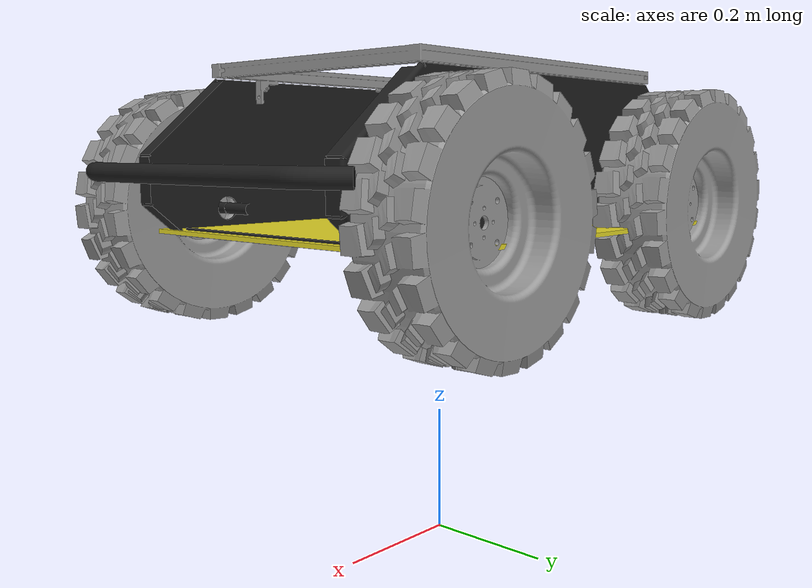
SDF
<?xml version="1.0" ?>
<sdf version="1.5">
  <model name="husky">
    <pose>0 0 .5 0 0 0</pose>
    <!-- Main Chassis -->
    <link name="base_link">
      <!-- Physics -->
      <collision name="collision">
        <pose>0 0 0.1 0 0 0</pose>
        <geometry>
          <box>
            <size>1.0074 0.5709 0.2675</size>
          </box>
        </geometry>
      </collision>
      <inertial>
        <mass>33.855</mass>
        <pose>-0.0856132 -0.000839955 0.238145 0 0 0</pose>
        <inertia>
          <ixx>2.2343</ixx>
          <ixy>-0.023642</ixy>
          <ixz>0.275174</ixz>
          <iyy>3.42518</iyy>
          <iyz>0.00239624</iyz>
          <izz>2.1241</izz>
        </inertia>
      </inertial>
      <!-- Visual -->
      <!-- Base frame -->
      <visual name="base">
        <pose>0 0 0 0 0 0</pose>
        <geometry>
          <mesh>
            <uri>model://husky/meshes/base_link.stl</uri>
          </mesh>
        </geometry>
        <material>
          <script>
            <name>Gazebo/FlatBlack</name>
          </script>
        </material>
      </visual>
      <!-- Top Plate -->
      <visual name="top_plate">
        <pose>0 0 0 0 0 0</pose>
        <geometry>
          <mesh>
            <uri>model://husky/meshes/top_plate.stl</uri>
          </mesh>
        </geometry>
        <material>
          <script>
            <name>Gazebo/Yellow</name>
          </script>
        </material>
      </visual>
      <!-- Front Bumper -->
      <visual name="front_bumper">
        <pose>0.47 0 0.091 0 0 0</pose>
        <geometry>
          <mesh>
            <uri>model://husky/meshes/bumper.stl</uri>
          </mesh>
        </geometry>
        <material>
          <script>
            <name>Gazebo/FlatBlack</name>
          </script>
        </material>
      </visual>
      <!-- Rear Bumper -->
      <visual name="rear_bumper">
        <pose>-0.47 0 0.091 0 0 3.141</pose>
        <geometry>
          <mesh>
            <uri>model://husky/meshes/bumper.stl</uri>
          </mesh>
        </geometry>
        <material>
          <script>
            <name>Gazebo/FlatBlack</name>
          </script>
        </material>
      </visual>
      <!-- User Rail -->
      <visual name="user_rail">
        <pose>0.272 0 0.245 0 0 0</pose>
        <geometry>
          <mesh>
            <uri>model://husky/meshes/user_rail.stl</uri>
          </mesh>
        </geometry>
        <material>
          <script>
            <name>Gazebo/Grey</name>
          </script>
        </material>
      </visual>
    </link>
    <!-- Back Left Wheel -->
    <link name="back_left_wheel">
      <pose>-0.256 0.285475 0.035 0 0 0</pose>
      <inertial>
        <mass>2.6357</mass>
        <pose>0 0 0 0 0 0</pose>
        <inertia>
          <ixx>0.0246688</ixx>
          <ixy>0</ixy>
          <ixz>0</ixz>
          <iyy>0.0246688</iyy>
          <iyz>0</iyz>
          <izz>0.0441058</izz>
        </inertia>
      </inertial>
      <collision name="back_left_wheel_collision">
        <pose>0 0 0 -1.5707 0 0</pose>
        <geometry>
          <cylinder>
            <radius>0.17775</radius>
            <length>0.1143</length>
          </cylinder>
        </geometry>
        <surface>
          <friction>
            <ode>
              <mu>100000.0</mu>
              <mu2>100000.0</mu2>
              <slip1>0.0</slip1>
              <slip2>0.0</slip2>
            </ode>
          </friction>
        </surface>
      </collision>
      <visual name="back_left_wheel">
        <pose>0 0 0 -3.14159 0 0</pose>
        <geometry>
          <mesh>
            <uri>model://husky/meshes/wheel.stl</uri>
          </mesh>
        </geometry>
        <material>
          <script>
            <name>Gazebo/Grey</name>
          </script>
        </material>
      </visual>
    </link>
    <joint name="back_left_joint" type="revolute">
      <parent>base_link</parent>
      <child>back_left_wheel</child>
      <axis>
        <xyz>0 1 0</xyz>
        <use_parent_model_frame>true</use_parent_model_frame>
      </axis>
      <physics>
        <ode>
          <limit>
            <cfm>0.000000</cfm>
            <erp>0.900000</erp>
          </limit>
        </ode>
      </physics>
    </joint>
    <!-- Back Right Wheel -->
    <link name="back_right_wheel">
      <pose>-0.256 -0.285475 0.035 0 0 0</pose>
      <inertial>
        <mass>2.6357</mass>
        <pose>0 0 0 0 0 0</pose>
        <inertia>
          <ixx>0.0246688</ixx>
          <ixy>0</ixy>
          <ixz>0</ixz>
          <iyy>0.0246688</iyy>
          <iyz>0</iyz>
          <izz>0.0441058</izz>
        </inertia>
      </inertial>
      <collision name="back_right_wheel_collision">
        <pose>0 0 0 -1.5707 0 0</pose>
        <geometry>
          <cylinder>
            <radius>0.17775</radius>
            <length>0.1143</length>
          </cylinder>
        </geometry>
        <surface>
          <friction>
            <ode>
              <mu>100000.0</mu>
              <mu2>100000.0</mu2>
              <slip1>0.0</slip1>
              <slip2>0.0</slip2>
            </ode>
          </friction>
        </surface>
      </collision>
      <visual name="back_right_wheel">
        <pose>0 0 0 -3.14159 0 0</pose>
        <geometry>
          <mesh>
            <uri>model://husky/meshes/wheel.stl</uri>
          </mesh>
        </geometry>
        <material>
          <script>
            <name>Gazebo/Grey</name>
          </script>
        </material>
      </visual>
    </link>
    <joint name="back_right_joint" type="revolute">
      <parent>base_link</parent>
      <child>back_right_wheel</child>
      <axis>
        <xyz>0 1 0</xyz>
        <use_parent_model_frame>true</use_parent_model_frame>
      </axis>
      <physics>
        <ode>
          <limit>
            <cfm>0.000000</cfm>
            <erp>0.900000</erp>
          </limit>
        </ode>
      </physics>
    </joint>
    <!-- Front Left Wheel -->
    <link name="front_left_wheel">
      <pose>0.256 0.285475 0.035 0 0 0</pose>
      <inertial>
        <mass>2.6357</mass>
        <pose>0 0 0 0 0 0</pose>
        <inertia>
          <ixx>0.0246688</ixx>
          <ixy>0</ixy>
          <ixz>0</ixz>
          <iyy>0.0246688</iyy>
          <iyz>0</iyz>
          <izz>0.0441058</izz>
        </inertia>
      </inertial>
      <collision name="front_left_wheel_collision">
        <pose>0 0 0 -1.5707 0 0</pose>
        <geometry>
          <cylinder>
            <radius>0.17775</radius>
            <length>0.1143</length>
          </cylinder>
        </geometry>
        <surface>
          <friction>
            <ode>
              <mu>100000.0</mu>
              <mu2>100000.0</mu2>
              <slip1>0.0</slip1>
              <slip2>0.0</slip2>
            </ode>
          </friction>
        </surface>
      </collision>
      <visual name="front_left_wheel">
        <pose>0 0 0 -3.14159 0 0</pose>
        <geometry>
          <mesh>
            <uri>model://husky/meshes/wheel.stl</uri>
          </mesh>
        </geometry>
        <material>
          <script>
            <name>Gazebo/Grey</name>
          </script>
        </material>
      </visual>
    </link>
    <joint name="front_left_joint" type="revolute">
      <parent>base_link</parent>
      <child>front_left_wheel</child>
      <axis>
        <xyz>0 1 0</xyz>
        <use_parent_model_frame>true</use_parent_model_frame>
      </axis>
      <physics>
        <ode>
          <limit>
            <cfm>0.000000</cfm>
            <erp>0.900000</erp>
          </limit>
        </ode>
      </physics>
    </joint>
    <!-- Front Right Wheel -->
    <link name="front_right_wheel">
      <pose>0.256 -0.285475 0.035 0 0 0</pose>
      <inertial>
        <mass>2.6357</mass>
        <pose>0 0 0 0 0 0</pose>
        <inertia>
          <ixx>0.0246688</ixx>
          <ixy>0</ixy>
          <ixz>0</ixz>
          <iyy>0.0246688</iyy>
          <iyz>0</iyz>
          <izz>0.0441058</izz>
        </inertia>
      </inertial>
      <collision name="front_right_wheel_collision">
        <pose>0 0 0 -1.5707 0 0</pose>
        <geometry>
          <cylinder>
            <radius>0.17775</radius>
            <length>0.1143</length>
          </cylinder>
        </geometry>
        <surface>
          <friction>
            <ode>
              <mu>100000.0</mu>
              <mu2>100000.0</mu2>
              <slip1>0.0</slip1>
              <slip2>0.0</slip2>
            </ode>
          </friction>
        </surface>
      </collision>
      <visual name="front_right_wheel">
        <pose>0 0 0 -3.14159 0 0</pose>
        <geometry>
          <mesh>
            <uri>model://husky/meshes/wheel.stl</uri>
          </mesh>
        </geometry>
        <material>
          <script>
            <name>Gazebo/Grey</name>
          </script>
        </material>
      </visual>
    </link>
    <joint name="front_right_joint" type="revolute">
      <parent>base_link</parent>
      <child>front_right_wheel</child>
      <axis>
        <xyz>0 1 0</xyz>
        <use_parent_model_frame>true</use_parent_model_frame>
      </axis>
      <physics>
        <ode>
          <limit>
            <cfm>0.000000</cfm>
            <erp>0.900000</erp>
          </limit>
        </ode>
      </physics>
    </joint>
    <sensor name="laser" type="gpu_lidar">
      <pose frame="">0.424 0 0.387 0 -0 0</pose>
      <topic>marble_husky/lidar</topic>
      <visualize>1</visualize>
      <update_rate>10</update_rate>
      <always_on>1</always_on>
      <lidar>
        <scan>
          <horizontal>
            <samples>2048</samples>
            <resolution>1</resolution>
            <min_angle>-3.14159</min_angle>
            <max_angle>3.14159</max_angle>
          </horizontal>
          <vertical>
            <samples>128</samples>
            <resolution>1</resolution>
            <min_angle>-0.2897</min_angle>
            <max_angle>0.2897</max_angle>
          </vertical>
        </scan>
        <range>
          <min>0.8</min>
          <max>120</max>
          <resolution>0.01</resolution>
        </range>
        <noise>
          <type>gaussian</type>
          <mean>0</mean>
          <stddev>0.01</stddev>
        </noise>
      </lidar>
    </sensor>
    <!-- Plugins -->
    <plugin filename="gz-sim-odometry-publisher-system"
      name="gz::sim::systems::OdometryPublisher">
      <odom_frame>world</odom_frame>
      <robot_base_frame>marble_husky</robot_base_frame>
      <odom_publish_frequency>50</odom_publish_frequency>
      <odom_topic>marble_husky/odometry</odom_topic>
      <odom_covariance_topic>marble_husky/odometry_with_covariance</odom_covariance_topic>
      <dimensions>3</dimensions>
    </plugin>
    <plugin filename="gz-sim-pose-publisher-system"
      name="gz::sim::systems::PosePublisher">
      <publish_link_pose>true</publish_link_pose>
      <publish_visual_pose>true</publish_visual_pose>
      <publish_collision_pose>true</publish_collision_pose>
      <publish_sensor_pose>true</publish_sensor_pose>
      <publish_model_pose>true</publish_model_pose>
      <publish_nested_model_pose>false</publish_nested_model_pose>
      <use_pose_vector_msg>true</use_pose_vector_msg>
      <static_publisher>true</static_publisher>
      <static_update_frequency>200</static_update_frequency>
    </plugin>
    <plugin name="husky_diff_controller" filename="libhusky_gazebo_plugins.so">
      <alwaysOn>true</alwaysOn>
      <updateRate>100.0</updateRate>
      <topic>/marble_husky/command/velocity</topic>
      <backLeftJoint>back_left_joint</backLeftJoint>
      <backRightJoint>back_right_joint</backRightJoint>
      <frontLeftJoint>front_left_joint</frontLeftJoint>
      <frontRightJoint>front_right_joint</frontRightJoint>
      <wheelSeparation>0.5709</wheelSeparation>
      <wheelDiameter>0.3555</wheelDiameter>
      <torque>35</torque>
    </plugin>
  </model>
</sdf>
